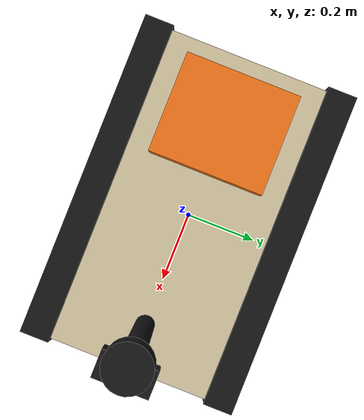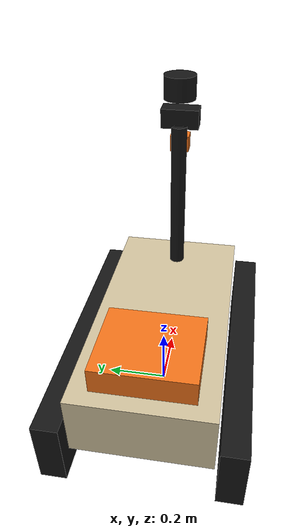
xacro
<?xml version="1.0"?>
<robot xmlns:xacro="http://www.ros.org/wiki/xacro" name="trecsar">
  <xacro:arg name="cameras" default="true"/>  <!-- false: lidar only (faster headless sim / CI) -->
  <xacro:property name="L" value="0.84"/>
  <xacro:property name="W" value="0.42"/>
  <xacro:property name="H" value="0.20"/>
  <xacro:property name="mass" value="80.0"/>
  <xacro:property name="wheel_r" value="0.10"/>
  <xacro:property name="wheel_w" value="0.08"/>
  <xacro:property name="track_y" value="${W/2 + wheel_w/2 + 0.01}"/>

  <xacro:macro name="box_inertia" params="m x y z">
    <inertia ixx="${m*(y*y+z*z)/12}" ixy="0" ixz="0" iyy="${m*(x*x+z*z)/12}" iyz="0" izz="${m*(x*x+y*y)/12}"/>
  </xacro:macro>

  <material name="sand"><color rgba="0.82 0.76 0.62 1"/></material>
  <material name="black"><color rgba="0.08 0.08 0.08 1"/></material>
  <material name="orange"><color rgba="0.95 0.45 0.10 1"/></material>

  <link name="base_footprint"/>
  <joint name="base_joint" type="fixed">
    <parent link="base_footprint"/><child link="base_link"/>
    <origin xyz="0 0 ${wheel_r + 0.02}"/>
  </joint>

  <link name="base_link">
    <visual><origin xyz="0 0 ${H/2}"/><geometry><box size="${L} ${W} ${H}"/></geometry><material name="sand"/></visual>
    <collision><origin xyz="0 0 ${H/2}"/><geometry><box size="${L} ${W} ${H}"/></geometry></collision>
    <inertial><origin xyz="0 0 ${H/2}"/><mass value="${mass}"/><xacro:box_inertia m="${mass}" x="${L}" y="${W}" z="${H}"/></inertial>
  </link>

  <!-- track belts (visual only) -->
  <xacro:macro name="track_belt" params="side y">
    <link name="${side}_track">
      <visual><geometry><box size="${L + 0.06} ${wheel_w} ${2*wheel_r + 0.02}"/></geometry><material name="black"/></visual>
    </link>
    <joint name="${side}_track_joint" type="fixed">
      <parent link="base_link"/><child link="${side}_track"/><origin xyz="0 ${y} 0"/>
    </joint>
  </xacro:macro>
  <xacro:track_belt side="left" y="${track_y}"/>
  <xacro:track_belt side="right" y="${-track_y}"/>

  <xacro:macro name="wheel" params="name x y mu">
    <link name="${name}">
      <collision><origin rpy="${pi/2} 0 0"/><geometry><cylinder radius="${wheel_r}" length="${wheel_w}"/></geometry></collision>
      <inertial><mass value="2.0"/><inertia ixx="0.006" ixy="0" ixz="0" iyy="0.01" iyz="0" izz="0.006"/></inertial>
    </link>
    <joint name="${name}_joint" type="continuous">
      <parent link="base_link"/><child link="${name}"/><origin xyz="${x} ${y} 0"/><axis xyz="0 1 0"/>
    </joint>
    <gazebo reference="${name}">
      <mu1>${mu}</mu1><mu2>${mu}</mu2>  <!-- sdformat converts these into the collision surface -->
    </gazebo>
  </xacro:macro>
  <xacro:wheel name="left_front" x="${L/2 - wheel_r}" y="${track_y}" mu="0.05"/>
  <xacro:wheel name="left_mid" x="0" y="${track_y}" mu="1.0"/>
  <xacro:wheel name="left_rear" x="${-L/2 + wheel_r}" y="${track_y}" mu="0.05"/>
  <xacro:wheel name="right_front" x="${L/2 - wheel_r}" y="${-track_y}" mu="0.05"/>
  <xacro:wheel name="right_mid" x="0" y="${-track_y}" mu="1.0"/>
  <xacro:wheel name="right_rear" x="${-L/2 + wheel_r}" y="${-track_y}" mu="0.05"/>

  <!-- sensor mast: RGB camera + thermal camera -->
  <link name="mast">
    <visual><origin xyz="0 0 0.25"/><geometry><cylinder radius="0.025" length="0.5"/></geometry><material name="black"/></visual>
    <inertial><mass value="1.5"/><inertia ixx="0.03" ixy="0" ixz="0" iyy="0.03" iyz="0" izz="0.001"/></inertial>
  </link>
  <joint name="mast_joint" type="fixed"><parent link="base_link"/><child link="mast"/><origin xyz="${L/2 - 0.12} 0 ${H}"/></joint>

  <link name="camera_link">
    <visual><geometry><box size="0.06 0.12 0.06"/></geometry><material name="black"/></visual>
  </link>
  <joint name="camera_joint" type="fixed"><parent link="mast"/><child link="camera_link"/><origin xyz="0.03 0 0.52"/></joint>
  <link name="camera_optical"/>
  <joint name="camera_optical_joint" type="fixed"><parent link="camera_link"/><child link="camera_optical"/>
    <origin rpy="${-pi/2} 0 ${-pi/2}"/></joint>

  <link name="thermal_link">
    <visual><geometry><box size="0.05 0.06 0.05"/></geometry><material name="orange"/></visual>
  </link>
  <joint name="thermal_joint" type="fixed"><parent link="mast"/><child link="thermal_link"/><origin xyz="0.03 0 0.44"/></joint>

  <!-- 2D lidar for SLAM / Nav2 -->
  <link name="lidar_link">
    <visual><geometry><cylinder radius="0.05" length="0.07"/></geometry><material name="black"/></visual>
  </link>
  <!-- on top of the mast, above every part of the robot: a lower mount let the lidar see the
       relay bay, which Nav2 then treated as a permanent obstacle -->
  <joint name="lidar_joint" type="fixed"><parent link="mast"/><child link="lidar_link"/><origin xyz="0 0 0.62"/></joint>

  <link name="imu_link"/>
  <joint name="imu_joint" type="fixed"><parent link="base_link"/><child link="imu_link"/><origin xyz="0 0 0.05"/></joint>

  <!-- payload bay: relay dropper (holds up to 4 mesh-radio nodes) -->
  <link name="relay_bay">
    <visual><geometry><box size="0.26 0.30 0.08"/></geometry><material name="orange"/></visual>
  </link>
  <joint name="relay_bay_joint" type="fixed"><parent link="base_link"/><child link="relay_bay"/><origin xyz="${-L/2 + 0.18} 0 ${H + 0.04}"/></joint>

  <!-- ===================== Gazebo (Harmonic) ===================== -->
  <gazebo>
    <plugin filename="gz-sim-diff-drive-system" name="gz::sim::systems::DiffDrive">
      <left_joint>left_front_joint</left_joint><left_joint>left_mid_joint</left_joint><left_joint>left_rear_joint</left_joint>
      <right_joint>right_front_joint</right_joint><right_joint>right_mid_joint</right_joint><right_joint>right_rear_joint</right_joint>
      <wheel_separation>${2*track_y}</wheel_separation>
      <wheel_radius>${wheel_r}</wheel_radius>
      <max_linear_velocity>2.22</max_linear_velocity>   <!-- 8 km/h, TREC spec -->
      <max_angular_velocity>1.5</max_angular_velocity>
      <topic>/cmd_vel</topic>
      <odom_topic>/odom</odom_topic>
      <tf_topic>/tf</tf_topic>
      <frame_id>odom</frame_id>
      <child_frame_id>base_footprint</child_frame_id>
      <odom_publish_frequency>30</odom_publish_frequency>
    </plugin>
    <plugin filename="gz-sim-joint-state-publisher-system" name="gz::sim::systems::JointStatePublisher"/>
    <plugin filename="gz-sim-pose-publisher-system" name="gz::sim::systems::PosePublisher">
      <publish_link_pose>false</publish_link_pose>
      <publish_model_pose>true</publish_model_pose>
      <use_pose_vector_msg>false</use_pose_vector_msg>
      <update_frequency>10</update_frequency>
    </plugin>
  </gazebo>

  <xacro:if value="$(arg cameras)">
  <gazebo reference="camera_link">
    <sensor name="rgb_camera" type="camera">
      <gz_frame_id>camera_optical</gz_frame_id>
      <update_rate>10</update_rate><topic>/camera/image</topic>
      <camera><horizontal_fov>1.2</horizontal_fov><image><width>640</width><height>480</height></image>
        <clip><near>0.1</near><far>120</far></clip></camera>
    </sensor>
  </gazebo>

  <gazebo reference="thermal_link">
    <sensor name="thermal_camera" type="thermal_camera">
      <update_rate>9</update_rate><topic>/thermal/image</topic>
      <camera><horizontal_fov>0.9</horizontal_fov><image><width>320</width><height>240</height><format>L16</format></image>
        <clip><near>0.1</near><far>80</far></clip></camera>
    </sensor>
  </gazebo>

  </xacro:if>

  <gazebo reference="lidar_link">
    <sensor name="lidar" type="gpu_lidar">
      <gz_frame_id>lidar_link</gz_frame_id>
      <update_rate>10</update_rate><topic>/scan</topic>
      <lidar>
        <scan><horizontal><samples>720</samples><min_angle>-3.14159</min_angle><max_angle>3.14159</max_angle></horizontal></scan>
        <range><min>0.3</min><max>40.0</max></range>
      </lidar>
    </sensor>
  </gazebo>

  <gazebo reference="imu_link">
    <sensor name="imu" type="imu"><update_rate>100</update_rate><topic>/imu</topic></sensor>
  </gazebo>
</robot>
